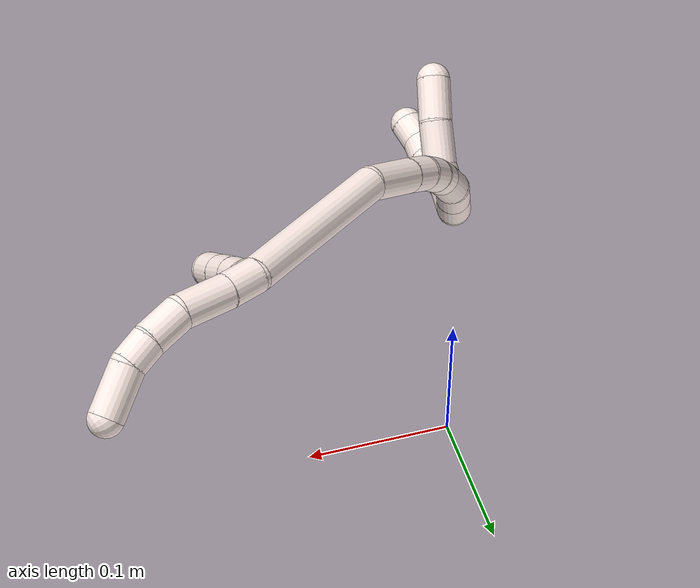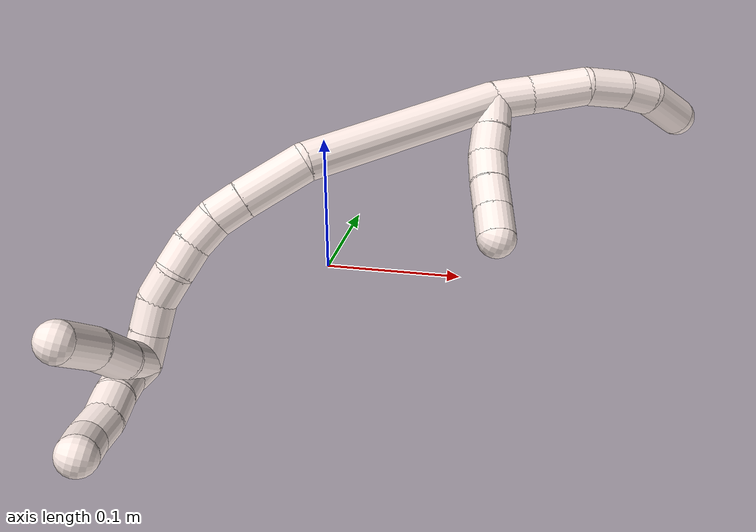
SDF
<sdf version="1.7">
 <world name="default">
  <model name="11">
   <static>0</static>
   <link name="11">
    <collision name="collision-cylinder-e_1_2_8">
     <pose>0.004275 0.003325 -0.011368 -2.85704 0.346396 -1.76942</pose>
     <geometry><cylinder><radius>0.0125</radius><length>0.025185</length></cylinder></geometry>
     <surface>
      <friction><ode><mu>1.16</mu><mu2>1.16</mu2><slip1>0</slip1><slip2>0</slip2></ode></friction>
      <contact><ode><kp>1e+06</kp><kd>1</kd><max_vel>0</max_vel><min_depth>0.001</min_depth></ode></contact>
     </surface>
    </collision>
    <visual name="visual-cylinder-e_1_2_8">
     <pose>0.004275 0.003325 -0.011368 -2.85704 0.346396 -1.76942</pose>
     <geometry><cylinder><radius>0.0125</radius><length>0.025185</length></cylinder></geometry>
     <material><ambient>1 0.933333 0.909804 1</ambient></material>
    </visual>
    <collision name="collision-cylinder-e_2_8_9">
     <pose>0.015868 0.010512 -0.039872 -2.91994 0.394734 -2.12597</pose>
     <geometry><cylinder><radius>0.0125</radius><length>0.038057</length></cylinder></geometry>
     <surface>
      <friction><ode><mu>1.16</mu><mu2>1.16</mu2><slip1>0</slip1><slip2>0</slip2></ode></friction>
      <contact><ode><kp>1e+06</kp><kd>1</kd><max_vel>0</max_vel><min_depth>0.001</min_depth></ode></contact>
     </surface>
    </collision>
    <visual name="visual-cylinder-e_2_8_9">
     <pose>0.015868 0.010512 -0.039872 -2.91994 0.394734 -2.12597</pose>
     <geometry><cylinder><radius>0.0125</radius><length>0.038057</length></cylinder></geometry>
     <material><ambient>1 0.933333 0.909804 1</ambient></material>
    </visual>
    <collision name="collision-cylinder-e_3_9_10">
     <pose>0.024414 0.018776 -0.070476 -2.82564 0.086475 -0.530378</pose>
     <geometry><cylinder><radius>0.0125</radius><length>0.028447</length></cylinder></geometry>
     <surface>
      <friction><ode><mu>1.16</mu><mu2>1.16</mu2><slip1>0</slip1><slip2>0</slip2></ode></friction>
      <contact><ode><kp>1e+06</kp><kd>1</kd><max_vel>0</max_vel><min_depth>0.001</min_depth></ode></contact>
     </surface>
    </collision>
    <visual name="visual-cylinder-e_3_9_10">
     <pose>0.024414 0.018776 -0.070476 -2.82564 0.086475 -0.530378</pose>
     <geometry><cylinder><radius>0.0125</radius><length>0.028447</length></cylinder></geometry>
     <material><ambient>1 0.933333 0.909804 1</ambient></material>
    </visual>
    <collision name="collision-cylinder-e_4_10_11">
     <pose>0.024909 0.026795 -0.093921 -2.79385 -0.069061 0.388387</pose>
     <geometry><cylinder><radius>0.0125</radius><length>0.021274</length></cylinder></geometry>
     <surface>
      <friction><ode><mu>1.16</mu><mu2>1.16</mu2><slip1>0</slip1><slip2>0</slip2></ode></friction>
      <contact><ode><kp>1e+06</kp><kd>1</kd><max_vel>0</max_vel><min_depth>0.001</min_depth></ode></contact>
     </surface>
    </collision>
    <visual name="visual-cylinder-e_4_10_11">
     <pose>0.024909 0.026795 -0.093921 -2.79385 -0.069061 0.388387</pose>
     <geometry><cylinder><radius>0.0125</radius><length>0.021274</length></cylinder></geometry>
     <material><ambient>1 0.933333 0.909804 1</ambient></material>
    </visual>
    <collision name="collision-cylinder-e_5_11_6">
     <pose>0.017266 0.038453 -0.119081 -2.65451 -0.38231 1.32339</pose>
     <geometry><cylinder><radius>0.0125</radius><length>0.037038</length></cylinder></geometry>
     <surface>
      <friction><ode><mu>1.16</mu><mu2>1.16</mu2><slip1>0</slip1><slip2>0</slip2></ode></friction>
      <contact><ode><kp>1e+06</kp><kd>1</kd><max_vel>0</max_vel><min_depth>0.001</min_depth></ode></contact>
     </surface>
    </collision>
    <visual name="visual-cylinder-e_5_11_6">
     <pose>0.017266 0.038453 -0.119081 -2.65451 -0.38231 1.32339</pose>
     <geometry><cylinder><radius>0.0125</radius><length>0.037038</length></cylinder></geometry>
     <material><ambient>1 0.933333 0.909804 1</ambient></material>
    </visual>
    <collision name="collision-cylinder-e_1_2_12">
     <pose>-0.006389 -0.007553 -0.001458 1.76146 -0.693124 -0.82483</pose>
     <geometry><cylinder><radius>0.0125</radius><length>0.02</length></cylinder></geometry>
     <surface>
      <friction><ode><mu>1.16</mu><mu2>1.16</mu2><slip1>0</slip1><slip2>0</slip2></ode></friction>
      <contact><ode><kp>1e+06</kp><kd>1</kd><max_vel>0</max_vel><min_depth>0.001</min_depth></ode></contact>
     </surface>
    </collision>
    <visual name="visual-cylinder-e_1_2_12">
     <pose>-0.006389 -0.007553 -0.001458 1.76146 -0.693124 -0.82483</pose>
     <geometry><cylinder><radius>0.0125</radius><length>0.02</length></cylinder></geometry>
     <material><ambient>1 0.933333 0.909804 1</ambient></material>
    </visual>
    <collision name="collision-cylinder-e_2_12_13">
     <pose>-0.019513 -0.022455 -0.003726 1.68059 -0.738761 -0.815861</pose>
     <geometry><cylinder><radius>0.0125</radius><length>0.02</length></cylinder></geometry>
     <surface>
      <friction><ode><mu>1.16</mu><mu2>1.16</mu2><slip1>0</slip1><slip2>0</slip2></ode></friction>
      <contact><ode><kp>1e+06</kp><kd>1</kd><max_vel>0</max_vel><min_depth>0.001</min_depth></ode></contact>
     </surface>
    </collision>
    <visual name="visual-cylinder-e_2_12_13">
     <pose>-0.019513 -0.022455 -0.003726 1.68059 -0.738761 -0.815861</pose>
     <geometry><cylinder><radius>0.0125</radius><length>0.02</length></cylinder></geometry>
     <material><ambient>1 0.933333 0.909804 1</ambient></material>
    </visual>
    <collision name="collision-cylinder-e_3_13_14">
     <pose>-0.030474 -0.038683 -0.006347 1.77207 -0.436522 -0.530439</pose>
     <geometry><cylinder><radius>0.0125</radius><length>0.02</length></cylinder></geometry>
     <surface>
      <friction><ode><mu>1.16</mu><mu2>1.16</mu2><slip1>0</slip1><slip2>0</slip2></ode></friction>
      <contact><ode><kp>1e+06</kp><kd>1</kd><max_vel>0</max_vel><min_depth>0.001</min_depth></ode></contact>
     </surface>
    </collision>
    <visual name="visual-cylinder-e_3_13_14">
     <pose>-0.030474 -0.038683 -0.006347 1.77207 -0.436522 -0.530439</pose>
     <geometry><cylinder><radius>0.0125</radius><length>0.02</length></cylinder></geometry>
     <material><ambient>1 0.933333 0.909804 1</ambient></material>
    </visual>
    <collision name="collision-cylinder-e_4_14_15">
     <pose>-0.039115 -0.056193 -0.010615 1.848 -0.457046 -0.597549</pose>
     <geometry><cylinder><radius>0.0125</radius><length>0.02</length></cylinder></geometry>
     <surface>
      <friction><ode><mu>1.16</mu><mu2>1.16</mu2><slip1>0</slip1><slip2>0</slip2></ode></friction>
      <contact><ode><kp>1e+06</kp><kd>1</kd><max_vel>0</max_vel><min_depth>0.001</min_depth></ode></contact>
     </surface>
    </collision>
    <visual name="visual-cylinder-e_4_14_15">
     <pose>-0.039115 -0.056193 -0.010615 1.848 -0.457046 -0.597549</pose>
     <geometry><cylinder><radius>0.0125</radius><length>0.02</length></cylinder></geometry>
     <material><ambient>1 0.933333 0.909804 1</ambient></material>
    </visual>
    <collision name="collision-cylinder-e_5_15_5">
     <pose>-0.047819 -0.073554 -0.015388 1.83021 -0.443497 -0.57022</pose>
     <geometry><cylinder><radius>0.0125</radius><length>0.02</length></cylinder></geometry>
     <surface>
      <friction><ode><mu>1.16</mu><mu2>1.16</mu2><slip1>0</slip1><slip2>0</slip2></ode></friction>
      <contact><ode><kp>1e+06</kp><kd>1</kd><max_vel>0</max_vel><min_depth>0.001</min_depth></ode></contact>
     </surface>
    </collision>
    <visual name="visual-cylinder-e_5_15_5">
     <pose>-0.047819 -0.073554 -0.015388 1.83021 -0.443497 -0.57022</pose>
     <geometry><cylinder><radius>0.0125</radius><length>0.02</length></cylinder></geometry>
     <material><ambient>1 0.933333 0.909804 1</ambient></material>
    </visual>
    <collision name="collision-cylinder-e_1_2_16">
     <pose>-0.02443 -0.031955 0.053535 0.538142 -0.373452 -0.104102</pose>
     <geometry><cylinder><radius>0.0125</radius><length>0.133924</length></cylinder></geometry>
     <surface>
      <friction><ode><mu>1.16</mu><mu2>1.16</mu2><slip1>0</slip1><slip2>0</slip2></ode></friction>
      <contact><ode><kp>1e+06</kp><kd>1</kd><max_vel>0</max_vel><min_depth>0.001</min_depth></ode></contact>
     </surface>
    </collision>
    <visual name="visual-cylinder-e_1_2_16">
     <pose>-0.02443 -0.031955 0.053535 0.538142 -0.373452 -0.104102</pose>
     <geometry><cylinder><radius>0.0125</radius><length>0.133924</length></cylinder></geometry>
     <material><ambient>1 0.933333 0.909804 1</ambient></material>
    </visual>
    <collision name="collision-cylinder-e_2_16_17">
     <pose>-0.063158 -0.071644 0.121891 0.480907 -0.707551 -0.180617</pose>
     <geometry><cylinder><radius>0.0125</radius><length>0.043995</length></cylinder></geometry>
     <surface>
      <friction><ode><mu>1.16</mu><mu2>1.16</mu2><slip1>0</slip1><slip2>0</slip2></ode></friction>
      <contact><ode><kp>1e+06</kp><kd>1</kd><max_vel>0</max_vel><min_depth>0.001</min_depth></ode></contact>
     </surface>
    </collision>
    <visual name="visual-cylinder-e_2_16_17">
     <pose>-0.063158 -0.071644 0.121891 0.480907 -0.707551 -0.180617</pose>
     <geometry><cylinder><radius>0.0125</radius><length>0.043995</length></cylinder></geometry>
     <material><ambient>1 0.933333 0.909804 1</ambient></material>
    </visual>
    <collision name="collision-cylinder-e_3_17_18">
     <pose>-0.084394 -0.083056 0.143232 0.513721 -0.747415 -0.205274</pose>
     <geometry><cylinder><radius>0.0125</radius><length>0.020415</length></cylinder></geometry>
     <surface>
      <friction><ode><mu>1.16</mu><mu2>1.16</mu2><slip1>0</slip1><slip2>0</slip2></ode></friction>
      <contact><ode><kp>1e+06</kp><kd>1</kd><max_vel>0</max_vel><min_depth>0.001</min_depth></ode></contact>
     </surface>
    </collision>
    <visual name="visual-cylinder-e_3_17_18">
     <pose>-0.084394 -0.083056 0.143232 0.513721 -0.747415 -0.205274</pose>
     <geometry><cylinder><radius>0.0125</radius><length>0.020415</length></cylinder></geometry>
     <material><ambient>1 0.933333 0.909804 1</ambient></material>
    </visual>
    <collision name="collision-cylinder-e_4_18_19">
     <pose>-0.099414 -0.090991 0.154142 0.769895 -0.923093 -0.397709</pose>
     <geometry><cylinder><radius>0.0125</radius><length>0.020269</length></cylinder></geometry>
     <surface>
      <friction><ode><mu>1.16</mu><mu2>1.16</mu2><slip1>0</slip1><slip2>0</slip2></ode></friction>
      <contact><ode><kp>1e+06</kp><kd>1</kd><max_vel>0</max_vel><min_depth>0.001</min_depth></ode></contact>
     </surface>
    </collision>
    <visual name="visual-cylinder-e_4_18_19">
     <pose>-0.099414 -0.090991 0.154142 0.769895 -0.923093 -0.397709</pose>
     <geometry><cylinder><radius>0.0125</radius><length>0.020269</length></cylinder></geometry>
     <material><ambient>1 0.933333 0.909804 1</ambient></material>
    </visual>
    <collision name="collision-cylinder-e_5_19_20">
     <pose>-0.115674 -0.100325 0.161285 1.07404 -0.955885 -0.598305</pose>
     <geometry><cylinder><radius>0.0125</radius><length>0.020022</length></cylinder></geometry>
     <surface>
      <friction><ode><mu>1.16</mu><mu2>1.16</mu2><slip1>0</slip1><slip2>0</slip2></ode></friction>
      <contact><ode><kp>1e+06</kp><kd>1</kd><max_vel>0</max_vel><min_depth>0.001</min_depth></ode></contact>
     </surface>
    </collision>
    <visual name="visual-cylinder-e_5_19_20">
     <pose>-0.115674 -0.100325 0.161285 1.07404 -0.955885 -0.598305</pose>
     <geometry><cylinder><radius>0.0125</radius><length>0.020022</length></cylinder></geometry>
     <material><ambient>1 0.933333 0.909804 1</ambient></material>
    </visual>
    <collision name="collision-cylinder-e_6_20_21">
     <pose>-0.13365 -0.108114 0.166693 0.795862 -1.20123 -0.56075</pose>
     <geometry><cylinder><radius>0.0125</radius><length>0.021017</length></cylinder></geometry>
     <surface>
      <friction><ode><mu>1.16</mu><mu2>1.16</mu2><slip1>0</slip1><slip2>0</slip2></ode></friction>
      <contact><ode><kp>1e+06</kp><kd>1</kd><max_vel>0</max_vel><min_depth>0.001</min_depth></ode></contact>
     </surface>
    </collision>
    <visual name="visual-cylinder-e_6_20_21">
     <pose>-0.13365 -0.108114 0.166693 0.795862 -1.20123 -0.56075</pose>
     <geometry><cylinder><radius>0.0125</radius><length>0.021017</length></cylinder></geometry>
     <material><ambient>1 0.933333 0.909804 1</ambient></material>
    </visual>
    <collision name="collision-cylinder-e_7_21_22">
     <pose>-0.152631 -0.115099 0.168933 1.66786 -1.13336 -1.22315</pose>
     <geometry><cylinder><radius>0.0125</radius><length>0.020273</length></cylinder></geometry>
     <surface>
      <friction><ode><mu>1.16</mu><mu2>1.16</mu2><slip1>0</slip1><slip2>0</slip2></ode></friction>
      <contact><ode><kp>1e+06</kp><kd>1</kd><max_vel>0</max_vel><min_depth>0.001</min_depth></ode></contact>
     </surface>
    </collision>
    <visual name="visual-cylinder-e_7_21_22">
     <pose>-0.152631 -0.115099 0.168933 1.66786 -1.13336 -1.22315</pose>
     <geometry><cylinder><radius>0.0125</radius><length>0.020273</length></cylinder></geometry>
     <material><ambient>1 0.933333 0.909804 1</ambient></material>
    </visual>
    <collision name="collision-cylinder-e_8_22_1">
     <pose>-0.170911 -0.123601 0.168061 1.67818 -1.13355 -1.23311</pose>
     <geometry><cylinder><radius>0.0125</radius><length>0.020085</length></cylinder></geometry>
     <surface>
      <friction><ode><mu>1.16</mu><mu2>1.16</mu2><slip1>0</slip1><slip2>0</slip2></ode></friction>
      <contact><ode><kp>1e+06</kp><kd>1</kd><max_vel>0</max_vel><min_depth>0.001</min_depth></ode></contact>
     </surface>
    </collision>
    <visual name="visual-cylinder-e_8_22_1">
     <pose>-0.170911 -0.123601 0.168061 1.67818 -1.13355 -1.23311</pose>
     <geometry><cylinder><radius>0.0125</radius><length>0.020085</length></cylinder></geometry>
     <material><ambient>1 0.933333 0.909804 1</ambient></material>
    </visual>
    <collision name="collision-cylinder-e_1_1_23">
     <pose>-0.179736 -0.137326 0.170726 1.25331 0.027241 0.019723</pose>
     <geometry><cylinder><radius>0.0125</radius><length>0.02</length></cylinder></geometry>
     <surface>
      <friction><ode><mu>1.16</mu><mu2>1.16</mu2><slip1>0</slip1><slip2>0</slip2></ode></friction>
      <contact><ode><kp>1e+06</kp><kd>1</kd><max_vel>0</max_vel><min_depth>0.001</min_depth></ode></contact>
     </surface>
    </collision>
    <visual name="visual-cylinder-e_1_1_23">
     <pose>-0.179736 -0.137326 0.170726 1.25331 0.027241 0.019723</pose>
     <geometry><cylinder><radius>0.0125</radius><length>0.02</length></cylinder></geometry>
     <material><ambient>1 0.933333 0.909804 1</ambient></material>
    </visual>
    <collision name="collision-cylinder-e_2_23_24">
     <pose>-0.178098 -0.156679 0.174836 1.47074 0.136914 0.123891</pose>
     <geometry><cylinder><radius>0.0125</radius><length>0.02</length></cylinder></geometry>
     <surface>
      <friction><ode><mu>1.16</mu><mu2>1.16</mu2><slip1>0</slip1><slip2>0</slip2></ode></friction>
      <contact><ode><kp>1e+06</kp><kd>1</kd><max_vel>0</max_vel><min_depth>0.001</min_depth></ode></contact>
     </surface>
    </collision>
    <visual name="visual-cylinder-e_2_23_24">
     <pose>-0.178098 -0.156679 0.174836 1.47074 0.136914 0.123891</pose>
     <geometry><cylinder><radius>0.0125</radius><length>0.02</length></cylinder></geometry>
     <material><ambient>1 0.933333 0.909804 1</ambient></material>
    </visual>
    <collision name="collision-cylinder-e_3_24_25">
     <pose>-0.177803 -0.176459 0.176454 1.50753 -0.107122 -0.100562</pose>
     <geometry><cylinder><radius>0.0125</radius><length>0.02</length></cylinder></geometry>
     <surface>
      <friction><ode><mu>1.16</mu><mu2>1.16</mu2><slip1>0</slip1><slip2>0</slip2></ode></friction>
      <contact><ode><kp>1e+06</kp><kd>1</kd><max_vel>0</max_vel><min_depth>0.001</min_depth></ode></contact>
     </surface>
    </collision>
    <visual name="visual-cylinder-e_3_24_25">
     <pose>-0.177803 -0.176459 0.176454 1.50753 -0.107122 -0.100562</pose>
     <geometry><cylinder><radius>0.0125</radius><length>0.02</length></cylinder></geometry>
     <material><ambient>1 0.933333 0.909804 1</ambient></material>
    </visual>
    <collision name="collision-cylinder-e_4_25_26">
     <pose>-0.178744 -0.196099 0.179441 1.33267 0.012783 0.010051</pose>
     <geometry><cylinder><radius>0.0125</radius><length>0.02</length></cylinder></geometry>
     <surface>
      <friction><ode><mu>1.16</mu><mu2>1.16</mu2><slip1>0</slip1><slip2>0</slip2></ode></friction>
      <contact><ode><kp>1e+06</kp><kd>1</kd><max_vel>0</max_vel><min_depth>0.001</min_depth></ode></contact>
     </surface>
    </collision>
    <visual name="visual-cylinder-e_4_25_26">
     <pose>-0.178744 -0.196099 0.179441 1.33267 0.012783 0.010051</pose>
     <geometry><cylinder><radius>0.0125</radius><length>0.02</length></cylinder></geometry>
     <material><ambient>1 0.933333 0.909804 1</ambient></material>
    </visual>
    <collision name="collision-cylinder-e_5_26_4">
     <pose>-0.175609 -0.215335 0.182388 1.50913 0.305497 0.287474</pose>
     <geometry><cylinder><radius>0.0125</radius><length>0.02</length></cylinder></geometry>
     <surface>
      <friction><ode><mu>1.16</mu><mu2>1.16</mu2><slip1>0</slip1><slip2>0</slip2></ode></friction>
      <contact><ode><kp>1e+06</kp><kd>1</kd><max_vel>0</max_vel><min_depth>0.001</min_depth></ode></contact>
     </surface>
    </collision>
    <visual name="visual-cylinder-e_5_26_4">
     <pose>-0.175609 -0.215335 0.182388 1.50913 0.305497 0.287474</pose>
     <geometry><cylinder><radius>0.0125</radius><length>0.02</length></cylinder></geometry>
     <material><ambient>1 0.933333 0.909804 1</ambient></material>
    </visual>
    <collision name="collision-cylinder-e_1_1_27">
     <pose>-0.170146 -0.14055 0.172289 1.21799 0.628964 0.44616</pose>
     <geometry><cylinder><radius>0.0125</radius><length>0.033528</length></cylinder></geometry>
     <surface>
      <friction><ode><mu>1.16</mu><mu2>1.16</mu2><slip1>0</slip1><slip2>0</slip2></ode></friction>
      <contact><ode><kp>1e+06</kp><kd>1</kd><max_vel>0</max_vel><min_depth>0.001</min_depth></ode></contact>
     </surface>
    </collision>
    <visual name="visual-cylinder-e_1_1_27">
     <pose>-0.170146 -0.14055 0.172289 1.21799 0.628964 0.44616</pose>
     <geometry><cylinder><radius>0.0125</radius><length>0.033528</length></cylinder></geometry>
     <material><ambient>1 0.933333 0.909804 1</ambient></material>
    </visual>
    <collision name="collision-cylinder-e_2_27_28">
     <pose>-0.150068 -0.164137 0.184649 0.955761 0.654816 0.348241</pose>
     <geometry><cylinder><radius>0.0125</radius><length>0.033545</length></cylinder></geometry>
     <surface>
      <friction><ode><mu>1.16</mu><mu2>1.16</mu2><slip1>0</slip1><slip2>0</slip2></ode></friction>
      <contact><ode><kp>1e+06</kp><kd>1</kd><max_vel>0</max_vel><min_depth>0.001</min_depth></ode></contact>
     </surface>
    </collision>
    <visual name="visual-cylinder-e_2_27_28">
     <pose>-0.150068 -0.164137 0.184649 0.955761 0.654816 0.348241</pose>
     <geometry><cylinder><radius>0.0125</radius><length>0.033545</length></cylinder></geometry>
     <material><ambient>1 0.933333 0.909804 1</ambient></material>
    </visual>
    <collision name="collision-cylinder-e_3_28_3">
     <pose>-0.131707 -0.186483 0.200861 0.931435 0.517648 0.26458</pose>
     <geometry><cylinder><radius>0.0125</radius><length>0.032927</length></cylinder></geometry>
     <surface>
      <friction><ode><mu>1.16</mu><mu2>1.16</mu2><slip1>0</slip1><slip2>0</slip2></ode></friction>
      <contact><ode><kp>1e+06</kp><kd>1</kd><max_vel>0</max_vel><min_depth>0.001</min_depth></ode></contact>
     </surface>
    </collision>
    <visual name="visual-cylinder-e_3_28_3">
     <pose>-0.131707 -0.186483 0.200861 0.931435 0.517648 0.26458</pose>
     <geometry><cylinder><radius>0.0125</radius><length>0.032927</length></cylinder></geometry>
     <material><ambient>1 0.933333 0.909804 1</ambient></material>
    </visual>
    <collision name="collision-sphere-3">
     <pose>-0.12356 -0.197964 0.209398 0 -0 0</pose>
     <geometry><sphere><radius>0.0125</radius></sphere></geometry>
     <surface>
      <friction><ode><mu>1.16</mu><mu2>1.16</mu2><slip1>0</slip1><slip2>0</slip2></ode></friction>
      <contact><ode><kp>1e+06</kp><kd>1</kd><max_vel>0</max_vel><min_depth>0.001</min_depth></ode></contact>
     </surface>
    </collision>
    <visual name="visual-sphere-3">
     <pose>-0.12356 -0.197964 0.209398 0 -0 0</pose>
     <geometry><sphere><radius>0.0125</radius></sphere></geometry>
     <material><ambient>1 0.933333 0.909804 1</ambient></material>
    </visual>
    <collision name="collision-sphere-28">
     <pose>-0.139854 -0.175002 0.192325 0 -0 0</pose>
     <geometry><sphere><radius>0.0125</radius></sphere></geometry>
     <surface>
      <friction><ode><mu>1.16</mu><mu2>1.16</mu2><slip1>0</slip1><slip2>0</slip2></ode></friction>
      <contact><ode><kp>1e+06</kp><kd>1</kd><max_vel>0</max_vel><min_depth>0.001</min_depth></ode></contact>
     </surface>
    </collision>
    <visual name="visual-sphere-28">
     <pose>-0.139854 -0.175002 0.192325 0 -0 0</pose>
     <geometry><sphere><radius>0.0125</radius></sphere></geometry>
     <material><ambient>1 0.933333 0.909804 1</ambient></material>
    </visual>
    <collision name="collision-sphere-27">
     <pose>-0.160283 -0.153272 0.176973 0 -0 0</pose>
     <geometry><sphere><radius>0.0125</radius></sphere></geometry>
     <surface>
      <friction><ode><mu>1.16</mu><mu2>1.16</mu2><slip1>0</slip1><slip2>0</slip2></ode></friction>
      <contact><ode><kp>1e+06</kp><kd>1</kd><max_vel>0</max_vel><min_depth>0.001</min_depth></ode></contact>
     </surface>
    </collision>
    <visual name="visual-sphere-27">
     <pose>-0.160283 -0.153272 0.176973 0 -0 0</pose>
     <geometry><sphere><radius>0.0125</radius></sphere></geometry>
     <material><ambient>1 0.933333 0.909804 1</ambient></material>
    </visual>
    <collision name="collision-sphere-4">
     <pose>-0.172601 -0.224854 0.182976 0 -0 0</pose>
     <geometry><sphere><radius>0.0125</radius></sphere></geometry>
     <surface>
      <friction><ode><mu>1.16</mu><mu2>1.16</mu2><slip1>0</slip1><slip2>0</slip2></ode></friction>
      <contact><ode><kp>1e+06</kp><kd>1</kd><max_vel>0</max_vel><min_depth>0.001</min_depth></ode></contact>
     </surface>
    </collision>
    <visual name="visual-sphere-4">
     <pose>-0.172601 -0.224854 0.182976 0 -0 0</pose>
     <geometry><sphere><radius>0.0125</radius></sphere></geometry>
     <material><ambient>1 0.933333 0.909804 1</ambient></material>
    </visual>
    <collision name="collision-sphere-26">
     <pose>-0.178616 -0.205816 0.1818 0 -0 0</pose>
     <geometry><sphere><radius>0.0125</radius></sphere></geometry>
     <surface>
      <friction><ode><mu>1.16</mu><mu2>1.16</mu2><slip1>0</slip1><slip2>0</slip2></ode></friction>
      <contact><ode><kp>1e+06</kp><kd>1</kd><max_vel>0</max_vel><min_depth>0.001</min_depth></ode></contact>
     </surface>
    </collision>
    <visual name="visual-sphere-26">
     <pose>-0.178616 -0.205816 0.1818 0 -0 0</pose>
     <geometry><sphere><radius>0.0125</radius></sphere></geometry>
     <material><ambient>1 0.933333 0.909804 1</ambient></material>
    </visual>
    <collision name="collision-sphere-25">
     <pose>-0.178872 -0.186382 0.177083 0 -0 0</pose>
     <geometry><sphere><radius>0.0125</radius></sphere></geometry>
     <surface>
      <friction><ode><mu>1.16</mu><mu2>1.16</mu2><slip1>0</slip1><slip2>0</slip2></ode></friction>
      <contact><ode><kp>1e+06</kp><kd>1</kd><max_vel>0</max_vel><min_depth>0.001</min_depth></ode></contact>
     </surface>
    </collision>
    <visual name="visual-sphere-25">
     <pose>-0.178872 -0.186382 0.177083 0 -0 0</pose>
     <geometry><sphere><radius>0.0125</radius></sphere></geometry>
     <material><ambient>1 0.933333 0.909804 1</ambient></material>
    </visual>
    <collision name="collision-sphere-24">
     <pose>-0.176734 -0.166536 0.175826 0 -0 0</pose>
     <geometry><sphere><radius>0.0125</radius></sphere></geometry>
     <surface>
      <friction><ode><mu>1.16</mu><mu2>1.16</mu2><slip1>0</slip1><slip2>0</slip2></ode></friction>
      <contact><ode><kp>1e+06</kp><kd>1</kd><max_vel>0</max_vel><min_depth>0.001</min_depth></ode></contact>
     </surface>
    </collision>
    <visual name="visual-sphere-24">
     <pose>-0.176734 -0.166536 0.175826 0 -0 0</pose>
     <geometry><sphere><radius>0.0125</radius></sphere></geometry>
     <material><ambient>1 0.933333 0.909804 1</ambient></material>
    </visual>
    <collision name="collision-sphere-23">
     <pose>-0.179463 -0.146822 0.173846 0 -0 0</pose>
     <geometry><sphere><radius>0.0125</radius></sphere></geometry>
     <surface>
      <friction><ode><mu>1.16</mu><mu2>1.16</mu2><slip1>0</slip1><slip2>0</slip2></ode></friction>
      <contact><ode><kp>1e+06</kp><kd>1</kd><max_vel>0</max_vel><min_depth>0.001</min_depth></ode></contact>
     </surface>
    </collision>
    <visual name="visual-sphere-23">
     <pose>-0.179463 -0.146822 0.173846 0 -0 0</pose>
     <geometry><sphere><radius>0.0125</radius></sphere></geometry>
     <material><ambient>1 0.933333 0.909804 1</ambient></material>
    </visual>
    <collision name="collision-sphere-1">
     <pose>-0.180008 -0.127829 0.167605 0 -0 0</pose>
     <geometry><sphere><radius>0.0125</radius></sphere></geometry>
     <surface>
      <friction><ode><mu>1.16</mu><mu2>1.16</mu2><slip1>0</slip1><slip2>0</slip2></ode></friction>
      <contact><ode><kp>1e+06</kp><kd>1</kd><max_vel>0</max_vel><min_depth>0.001</min_depth></ode></contact>
     </surface>
    </collision>
    <visual name="visual-sphere-1">
     <pose>-0.180008 -0.127829 0.167605 0 -0 0</pose>
     <geometry><sphere><radius>0.0125</radius></sphere></geometry>
     <material><ambient>1 0.933333 0.909804 1</ambient></material>
    </visual>
    <collision name="collision-sphere-22">
     <pose>-0.161813 -0.119373 0.168517 0 -0 0</pose>
     <geometry><sphere><radius>0.0125</radius></sphere></geometry>
     <surface>
      <friction><ode><mu>1.16</mu><mu2>1.16</mu2><slip1>0</slip1><slip2>0</slip2></ode></friction>
      <contact><ode><kp>1e+06</kp><kd>1</kd><max_vel>0</max_vel><min_depth>0.001</min_depth></ode></contact>
     </surface>
    </collision>
    <visual name="visual-sphere-22">
     <pose>-0.161813 -0.119373 0.168517 0 -0 0</pose>
     <geometry><sphere><radius>0.0125</radius></sphere></geometry>
     <material><ambient>1 0.933333 0.909804 1</ambient></material>
    </visual>
    <collision name="collision-sphere-21">
     <pose>-0.143449 -0.110826 0.169349 0 -0 0</pose>
     <geometry><sphere><radius>0.0125</radius></sphere></geometry>
     <surface>
      <friction><ode><mu>1.16</mu><mu2>1.16</mu2><slip1>0</slip1><slip2>0</slip2></ode></friction>
      <contact><ode><kp>1e+06</kp><kd>1</kd><max_vel>0</max_vel><min_depth>0.001</min_depth></ode></contact>
     </surface>
    </collision>
    <visual name="visual-sphere-21">
     <pose>-0.143449 -0.110826 0.169349 0 -0 0</pose>
     <geometry><sphere><radius>0.0125</radius></sphere></geometry>
     <material><ambient>1 0.933333 0.909804 1</ambient></material>
    </visual>
    <collision name="collision-sphere-6">
     <pose>0.010357 0.046496 -0.134265 0 -0 0</pose>
     <geometry><sphere><radius>0.0125</radius></sphere></geometry>
     <surface>
      <friction><ode><mu>1.16</mu><mu2>1.16</mu2><slip1>0</slip1><slip2>0</slip2></ode></friction>
      <contact><ode><kp>1e+06</kp><kd>1</kd><max_vel>0</max_vel><min_depth>0.001</min_depth></ode></contact>
     </surface>
    </collision>
    <visual name="visual-sphere-6">
     <pose>0.010357 0.046496 -0.134265 0 -0 0</pose>
     <geometry><sphere><radius>0.0125</radius></sphere></geometry>
     <material><ambient>1 0.933333 0.909804 1</ambient></material>
    </visual>
    <collision name="collision-sphere-11">
     <pose>0.024175 0.030411 -0.103897 0 -0 0</pose>
     <geometry><sphere><radius>0.0125</radius></sphere></geometry>
     <surface>
      <friction><ode><mu>1.16</mu><mu2>1.16</mu2><slip1>0</slip1><slip2>0</slip2></ode></friction>
      <contact><ode><kp>1e+06</kp><kd>1</kd><max_vel>0</max_vel><min_depth>0.001</min_depth></ode></contact>
     </surface>
    </collision>
    <visual name="visual-sphere-11">
     <pose>0.024175 0.030411 -0.103897 0 -0 0</pose>
     <geometry><sphere><radius>0.0125</radius></sphere></geometry>
     <material><ambient>1 0.933333 0.909804 1</ambient></material>
    </visual>
    <collision name="collision-sphere-10">
     <pose>0.025643 0.023179 -0.083945 0 -0 0</pose>
     <geometry><sphere><radius>0.0125</radius></sphere></geometry>
     <surface>
      <friction><ode><mu>1.16</mu><mu2>1.16</mu2><slip1>0</slip1><slip2>0</slip2></ode></friction>
      <contact><ode><kp>1e+06</kp><kd>1</kd><max_vel>0</max_vel><min_depth>0.001</min_depth></ode></contact>
     </surface>
    </collision>
    <visual name="visual-sphere-10">
     <pose>0.025643 0.023179 -0.083945 0 -0 0</pose>
     <geometry><sphere><radius>0.0125</radius></sphere></geometry>
     <material><ambient>1 0.933333 0.909804 1</ambient></material>
    </visual>
    <collision name="collision-sphere-9">
     <pose>0.023186 0.014373 -0.057007 0 -0 0</pose>
     <geometry><sphere><radius>0.0125</radius></sphere></geometry>
     <surface>
      <friction><ode><mu>1.16</mu><mu2>1.16</mu2><slip1>0</slip1><slip2>0</slip2></ode></friction>
      <contact><ode><kp>1e+06</kp><kd>1</kd><max_vel>0</max_vel><min_depth>0.001</min_depth></ode></contact>
     </surface>
    </collision>
    <visual name="visual-sphere-9">
     <pose>0.023186 0.014373 -0.057007 0 -0 0</pose>
     <geometry><sphere><radius>0.0125</radius></sphere></geometry>
     <material><ambient>1 0.933333 0.909804 1</ambient></material>
    </visual>
    <collision name="collision-sphere-2">
     <geometry><sphere><radius>0.0125</radius></sphere></geometry>
     <surface>
      <friction><ode><mu>1.16</mu><mu2>1.16</mu2><slip1>0</slip1><slip2>0</slip2></ode></friction>
      <contact><ode><kp>1e+06</kp><kd>1</kd><max_vel>0</max_vel><min_depth>0.001</min_depth></ode></contact>
     </surface>
    </collision>
    <visual name="visual-sphere-2">
     <geometry><sphere><radius>0.0125</radius></sphere></geometry>
     <material><ambient>1 0.933333 0.909804 1</ambient></material>
    </visual>
    <collision name="collision-sphere-19">
     <pose>-0.107496 -0.095247 0.158533 0 -0 0</pose>
     <geometry><sphere><radius>0.0125</radius></sphere></geometry>
     <surface>
      <friction><ode><mu>1.16</mu><mu2>1.16</mu2><slip1>0</slip1><slip2>0</slip2></ode></friction>
      <contact><ode><kp>1e+06</kp><kd>1</kd><max_vel>0</max_vel><min_depth>0.001</min_depth></ode></contact>
     </surface>
    </collision>
    <visual name="visual-sphere-19">
     <pose>-0.107496 -0.095247 0.158533 0 -0 0</pose>
     <geometry><sphere><radius>0.0125</radius></sphere></geometry>
     <material><ambient>1 0.933333 0.909804 1</ambient></material>
    </visual>
    <collision name="collision-sphere-8">
     <pose>0.00855 0.00665 -0.022736 0 -0 0</pose>
     <geometry><sphere><radius>0.0125</radius></sphere></geometry>
     <surface>
      <friction><ode><mu>1.16</mu><mu2>1.16</mu2><slip1>0</slip1><slip2>0</slip2></ode></friction>
      <contact><ode><kp>1e+06</kp><kd>1</kd><max_vel>0</max_vel><min_depth>0.001</min_depth></ode></contact>
     </surface>
    </collision>
    <visual name="visual-sphere-8">
     <pose>0.00855 0.00665 -0.022736 0 -0 0</pose>
     <geometry><sphere><radius>0.0125</radius></sphere></geometry>
     <material><ambient>1 0.933333 0.909804 1</ambient></material>
    </visual>
    <collision name="collision-sphere-12">
     <pose>-0.012779 -0.015106 -0.002916 0 -0 0</pose>
     <geometry><sphere><radius>0.0125</radius></sphere></geometry>
     <surface>
      <friction><ode><mu>1.16</mu><mu2>1.16</mu2><slip1>0</slip1><slip2>0</slip2></ode></friction>
      <contact><ode><kp>1e+06</kp><kd>1</kd><max_vel>0</max_vel><min_depth>0.001</min_depth></ode></contact>
     </surface>
    </collision>
    <visual name="visual-sphere-12">
     <pose>-0.012779 -0.015106 -0.002916 0 -0 0</pose>
     <geometry><sphere><radius>0.0125</radius></sphere></geometry>
     <material><ambient>1 0.933333 0.909804 1</ambient></material>
    </visual>
    <collision name="collision-sphere-13">
     <pose>-0.026246 -0.029803 -0.004536 0 -0 0</pose>
     <geometry><sphere><radius>0.0125</radius></sphere></geometry>
     <surface>
      <friction><ode><mu>1.16</mu><mu2>1.16</mu2><slip1>0</slip1><slip2>0</slip2></ode></friction>
      <contact><ode><kp>1e+06</kp><kd>1</kd><max_vel>0</max_vel><min_depth>0.001</min_depth></ode></contact>
     </surface>
    </collision>
    <visual name="visual-sphere-13">
     <pose>-0.026246 -0.029803 -0.004536 0 -0 0</pose>
     <geometry><sphere><radius>0.0125</radius></sphere></geometry>
     <material><ambient>1 0.933333 0.909804 1</ambient></material>
    </visual>
    <collision name="collision-sphere-14">
     <pose>-0.034702 -0.047562 -0.008159 0 -0 0</pose>
     <geometry><sphere><radius>0.0125</radius></sphere></geometry>
     <surface>
      <friction><ode><mu>1.16</mu><mu2>1.16</mu2><slip1>0</slip1><slip2>0</slip2></ode></friction>
      <contact><ode><kp>1e+06</kp><kd>1</kd><max_vel>0</max_vel><min_depth>0.001</min_depth></ode></contact>
     </surface>
    </collision>
    <visual name="visual-sphere-14">
     <pose>-0.034702 -0.047562 -0.008159 0 -0 0</pose>
     <geometry><sphere><radius>0.0125</radius></sphere></geometry>
     <material><ambient>1 0.933333 0.909804 1</ambient></material>
    </visual>
    <collision name="collision-sphere-15">
     <pose>-0.043528 -0.064824 -0.013071 0 -0 0</pose>
     <geometry><sphere><radius>0.0125</radius></sphere></geometry>
     <surface>
      <friction><ode><mu>1.16</mu><mu2>1.16</mu2><slip1>0</slip1><slip2>0</slip2></ode></friction>
      <contact><ode><kp>1e+06</kp><kd>1</kd><max_vel>0</max_vel><min_depth>0.001</min_depth></ode></contact>
     </surface>
    </collision>
    <visual name="visual-sphere-15">
     <pose>-0.043528 -0.064824 -0.013071 0 -0 0</pose>
     <geometry><sphere><radius>0.0125</radius></sphere></geometry>
     <material><ambient>1 0.933333 0.909804 1</ambient></material>
    </visual>
    <collision name="collision-sphere-5">
     <pose>-0.05211 -0.082285 -0.017705 0 -0 0</pose>
     <geometry><sphere><radius>0.0125</radius></sphere></geometry>
     <surface>
      <friction><ode><mu>1.16</mu><mu2>1.16</mu2><slip1>0</slip1><slip2>0</slip2></ode></friction>
      <contact><ode><kp>1e+06</kp><kd>1</kd><max_vel>0</max_vel><min_depth>0.001</min_depth></ode></contact>
     </surface>
    </collision>
    <visual name="visual-sphere-5">
     <pose>-0.05211 -0.082285 -0.017705 0 -0 0</pose>
     <geometry><sphere><radius>0.0125</radius></sphere></geometry>
     <material><ambient>1 0.933333 0.909804 1</ambient></material>
    </visual>
    <collision name="collision-sphere-16">
     <pose>-0.04886 -0.063911 0.10707 0 -0 0</pose>
     <geometry><sphere><radius>0.0125</radius></sphere></geometry>
     <surface>
      <friction><ode><mu>1.16</mu><mu2>1.16</mu2><slip1>0</slip1><slip2>0</slip2></ode></friction>
      <contact><ode><kp>1e+06</kp><kd>1</kd><max_vel>0</max_vel><min_depth>0.001</min_depth></ode></contact>
     </surface>
    </collision>
    <visual name="visual-sphere-16">
     <pose>-0.04886 -0.063911 0.10707 0 -0 0</pose>
     <geometry><sphere><radius>0.0125</radius></sphere></geometry>
     <material><ambient>1 0.933333 0.909804 1</ambient></material>
    </visual>
    <collision name="collision-sphere-17">
     <pose>-0.077455 -0.079377 0.136711 0 -0 0</pose>
     <geometry><sphere><radius>0.0125</radius></sphere></geometry>
     <surface>
      <friction><ode><mu>1.16</mu><mu2>1.16</mu2><slip1>0</slip1><slip2>0</slip2></ode></friction>
      <contact><ode><kp>1e+06</kp><kd>1</kd><max_vel>0</max_vel><min_depth>0.001</min_depth></ode></contact>
     </surface>
    </collision>
    <visual name="visual-sphere-17">
     <pose>-0.077455 -0.079377 0.136711 0 -0 0</pose>
     <geometry><sphere><radius>0.0125</radius></sphere></geometry>
     <material><ambient>1 0.933333 0.909804 1</ambient></material>
    </visual>
    <collision name="collision-sphere-18">
     <pose>-0.091332 -0.086735 0.149752 0 -0 0</pose>
     <geometry><sphere><radius>0.0125</radius></sphere></geometry>
     <surface>
      <friction><ode><mu>1.16</mu><mu2>1.16</mu2><slip1>0</slip1><slip2>0</slip2></ode></friction>
      <contact><ode><kp>1e+06</kp><kd>1</kd><max_vel>0</max_vel><min_depth>0.001</min_depth></ode></contact>
     </surface>
    </collision>
    <visual name="visual-sphere-18">
     <pose>-0.091332 -0.086735 0.149752 0 -0 0</pose>
     <geometry><sphere><radius>0.0125</radius></sphere></geometry>
     <material><ambient>1 0.933333 0.909804 1</ambient></material>
    </visual>
    <collision name="collision-sphere-20">
     <pose>-0.123851 -0.105402 0.164037 0 -0 0</pose>
     <geometry><sphere><radius>0.0125</radius></sphere></geometry>
     <surface>
      <friction><ode><mu>1.16</mu><mu2>1.16</mu2><slip1>0</slip1><slip2>0</slip2></ode></friction>
      <contact><ode><kp>1e+06</kp><kd>1</kd><max_vel>0</max_vel><min_depth>0.001</min_depth></ode></contact>
     </surface>
    </collision>
    <visual name="visual-sphere-20">
     <pose>-0.123851 -0.105402 0.164037 0 -0 0</pose>
     <geometry><sphere><radius>0.0125</radius></sphere></geometry>
     <material><ambient>1 0.933333 0.909804 1</ambient></material>
    </visual>
    <inertial>
     <pose>-0.072808 -0.073362 0.076543 0 -0 0</pose>
     <mass>0.75</mass>
     <inertia>
      <ixx>0.000186</ixx>
      <ixy>0</ixy>
      <ixz>0</ixz>
      <iyy>0.000155</iyy>
      <iyz>0</iyz>
      <izz>0.00021</izz>
     </inertia>
    </inertial>
   </link>
   <pose>0.125478 -0.039855 0.148781 0.371821 -1.23013 -0.175996</pose>
  </model>
 </world>
</sdf>
